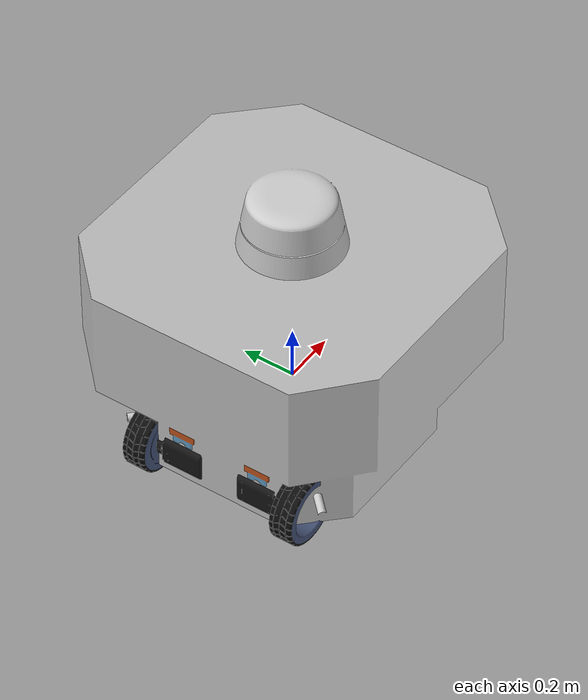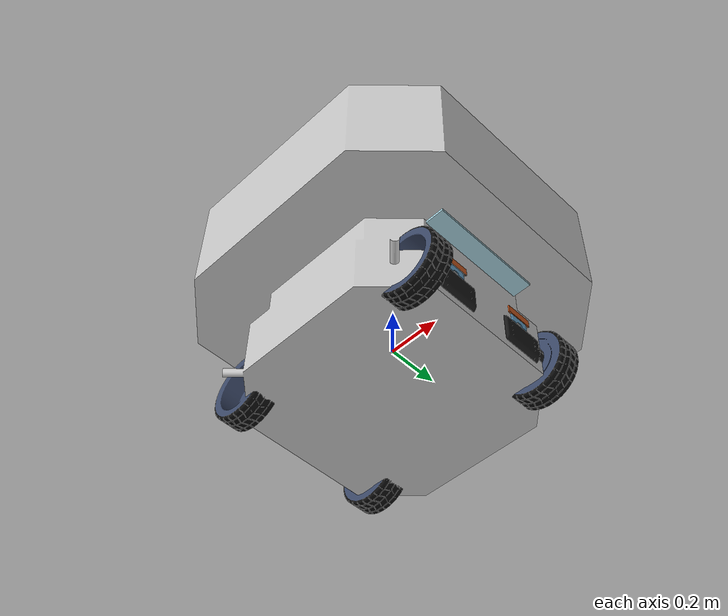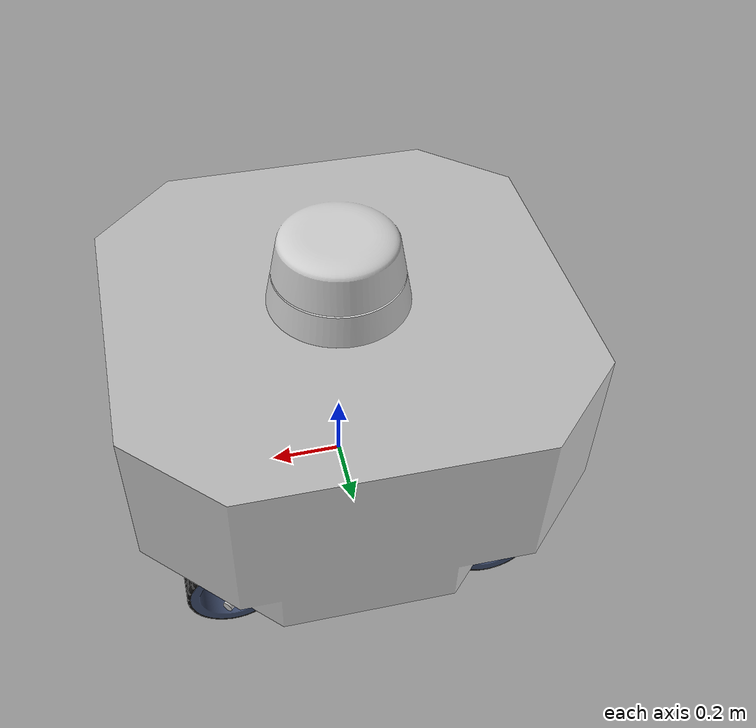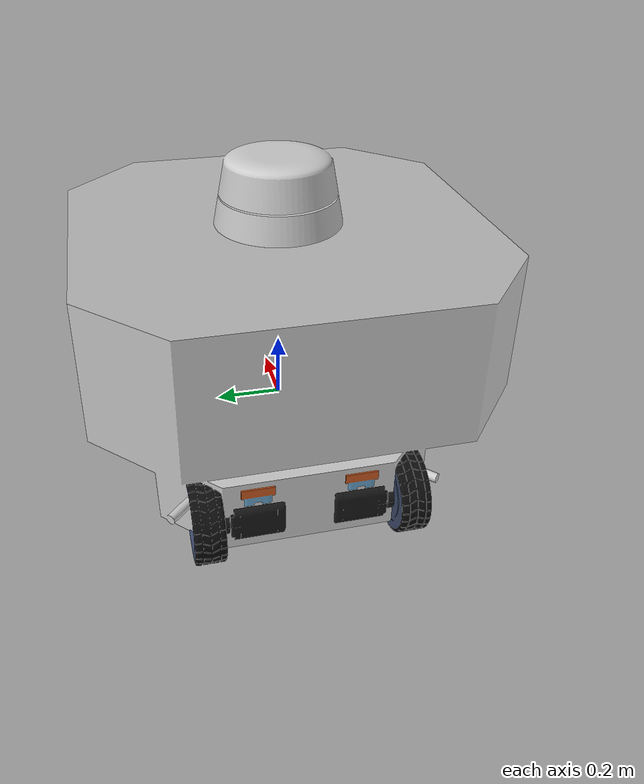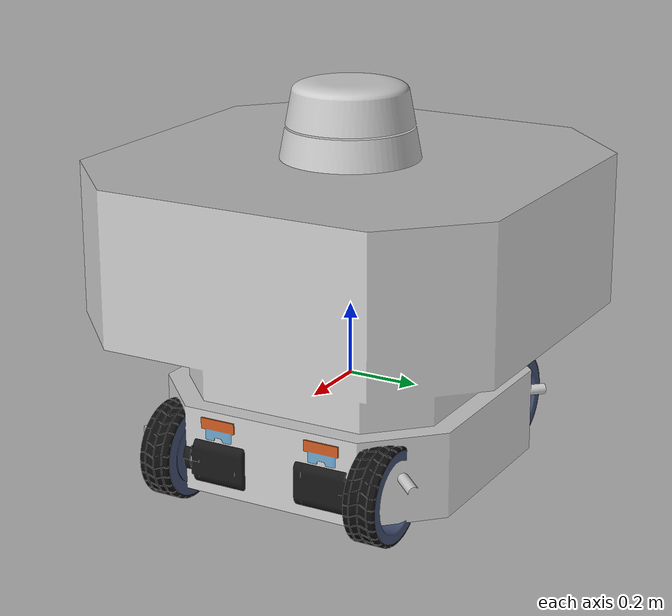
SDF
<sdf version="1.7">
  <model name="rs_robot">

    <link name="base_footprint"/>

    <joint name="base_joint" type="fixed">
      <parent>base_footprint</parent>
      <child>base_link</child>
      <pose>0.0 0.0 0.0 0 0 0</pose>
    </joint>

    <link name="base_link">
      <inertial>
        <pose>-0.015715 0.0 0.11 0.0 -0.0 0.0</pose>
        <mass>175.0</mass>
        <inertia>
          <ixx>1.514375</ixx>
          <ixy>0.0</ixy>
          <ixz>0.41250000000000003</ixz>
          <iyy>1.103034375</iyy>
          <iyz>0.0</iyz>
          <izz>1.061159375</izz>
        </inertia>
      </inertial>
      <collision name="base_footprint_fixed_joint_lump__base_link_collision">
        <pose>0.0 0.0 0.0 0.0 -0.0 1.5708</pose>
        <geometry>
          <mesh>
            <scale>5.0 5.0 5.0</scale>
            <uri>model://rs_robot/meshes/STL/base/base_link.stl</uri>
          </mesh>
        </geometry>
        <surface>
          <contact>
            <ode />
          </contact>
          <friction>
            <ode>
              <mu>0.05</mu>
              <mu2>0.05</mu2>
            </ode>
          </friction>
        </surface>
      </collision>
      <visual name="base_footprint_fixed_joint_lump__base_link_visual">
        <pose>0.0 0.0 0.0 0.0 -0.0 0.0</pose>
        <geometry>
          <mesh>
            <scale>5.0 5.0 5.0</scale>
            <uri>model://rs_robot/meshes/DAE/base/base_link.dae</uri>
          </mesh>
        </geometry>
      </visual>

      <sensor name="velodyne" type="gpu_ray">
        <pose>0 0 0.6 0 0 0</pose>
        <visualize>false</visualize>
        <always_on>1</always_on>
        <update_rate>10</update_rate>
        <ray>
          <scan>
            <horizontal>
              <samples>1024</samples>
              <resolution>0.05</resolution>
              <min_angle>-3.1416</min_angle>
              <max_angle>3.1416</max_angle>
            </horizontal>
            <vertical>
              <samples>512</samples>
              <resolution>0.05</resolution>
              <min_angle>-3.1416</min_angle>
              <max_angle>3.1416</max_angle>
            </vertical>
          </scan>
          <range>
            <min>0.2</min>
            <max>100</max>
            <resolution>0.01</resolution>
          </range>
          <noise>
            <type>gaussian</type>
            <mean>0</mean>
            <stddev>0.01</stddev>
          </noise>
        </ray>

        <plugin name="velodyne_plugin" filename="libgazebo_ros_velodyne_laser.so">
          <ros>
            <namespace>/rs_robot</namespace>
            <remapping>output:=velodyne_scan</remapping>
          </ros>
          <frameName>velodyne_link</frameName>
          <outputType>sensor_msgs/PointCloud2</outputType>
          <topicName>velodyne_scan</topicName>
        </plugin>
    </sensor>

    </link>

    <joint name="fl_steering_joint" type="revolute">
      <pose relative_to="base_link">0.385 0.155 -0.02 0.0 -0.0 0.0</pose>
      <parent>base_link</parent>
      <child>fl_steering_link</child>
      <axis>
        <xyz>0 0 1</xyz>
        <limit>
          <lower>-2.1</lower>
          <upper>2.1</upper>
          <effort>5</effort>
          <velocity>6.28</velocity>
        </limit>
        <dynamics>
          <damping>0.005</damping>
          <friction>0.02</friction>
          <spring_reference>0</spring_reference>
          <spring_stiffness>0</spring_stiffness>
        </dynamics>
      </axis>
    </joint>
    <link name="fl_steering_link">
      <pose relative_to="fl_steering_joint">0.0 0.0 0.0 0.0 -0.0 0.0</pose>
      <inertial>
        <pose>0.0 0.0 -0.1 0.0 -0.0 0.0</pose>
        <mass>18.75</mass>
        <inertia>
          <ixx>0.03125</ixx>
          <ixy>0.0</ixy>
          <ixz>0.0</ixz>
          <iyy>0.03125</iyy>
          <iyz>0.0</iyz>
          <izz>0.012499999999999999</izz>
        </inertia>
      </inertial>
      <collision name="fl_steering_link_collision">
        <pose>0.0 0.0 0.0 0.0 -0.0 0.0</pose>
        <geometry>
          <mesh>
            <scale>5.0 5.0 5.0</scale>
            <uri>model://rs_robot/meshes/STL/suspension/sus_link.stl</uri>
          </mesh>
        </geometry>
        <surface>
          <contact>
            <ode />
          </contact>
          <friction>
            <ode>
              <mu>0.05</mu>
              <mu2>0.05</mu2>
            </ode>
          </friction>
        </surface>
      </collision>
      <visual name="fl_steering_link_visual">
        <pose>0.0 0.0 0.0 0.0 -0.0 0.0</pose>
        <geometry>
          <mesh>
            <scale>5.0 5.0 5.0</scale>
            <uri>model://rs_robot/meshes/DAE/suspension/front_left_link.dae</uri>
          </mesh>
        </geometry>
      </visual>
      <self_collide>0</self_collide>
    </link>
    <joint name="fl_wheel_joint" type="revolute">
      <pose relative_to="fl_steering_link">0.0 0.10500000000000001 -0.125 0.0 0.0 -3.14159</pose>
      <parent>fl_steering_link</parent>
      <child>fl_wheel_link</child>
      <axis>
        <xyz>0 -1 0</xyz>
        <limit>
          <effort>1.5</effort>
          <velocity>20</velocity>
          <lower>-1e+16</lower>
          <upper>1e+16</upper>
        </limit>
        <dynamics>
          <damping>0.005</damping>
          <friction>0.02</friction>
          <spring_reference>0</spring_reference>
          <spring_stiffness>0</spring_stiffness>
        </dynamics>
      </axis>
    </joint>
    <link name="fl_wheel_link">
      <pose relative_to="fl_wheel_joint">0.0 0.0 0.0 0.0 -0.0 0.0</pose>
      <inertial>
        <pose>0.0 -0.035 0.0 0.0 -0.0 0.0</pose>
        <mass>6.25</mass>
        <inertia>
          <ixx>0.03125</ixx>
          <ixy>0.0</ixy>
          <ixz>0.0</ixz>
          <iyy>0.05625</iyy>
          <iyz>0.0</iyz>
          <izz>0.03125</izz>
        </inertia>
      </inertial>
      <collision name="fl_wheel_link_collision">
        <pose>0.0 0.0 0.0 0.0 -0.0 0.0</pose>
        <geometry>
          <mesh>
            <scale>5.0 5.0 5.0</scale>
            <uri>model://rs_robot/meshes/STL/wheel/robot_wheel.stl</uri>
          </mesh>
        </geometry>
      </collision>
      <visual name="fl_wheel_link_visual">
        <pose>0.0 0.0 0.0 0.0 -0.0 0.0</pose>
        <geometry>
          <mesh>
            <scale>5.0 5.0 5.0</scale>
            <uri>model://rs_robot/meshes/DAE/wheel/wheel_link.dae</uri>
          </mesh>
        </geometry>
      </visual>
    </link>
    <joint name="fr_steering_joint" type="revolute">
      <pose relative_to="base_link">0.385 -0.155 -0.02 0.0 -0.0 0.0</pose>
      <parent>base_link</parent>
      <child>fr_steering_link</child>
      <axis>
        <xyz>0 0 1</xyz>
        <limit>
          <lower>-2.1</lower>
          <upper>2.1</upper>
          <effort>5</effort>
          <velocity>6.28</velocity>
        </limit>
        <dynamics>
          <damping>0.005</damping>
          <friction>0.02</friction>
          <spring_reference>0</spring_reference>
          <spring_stiffness>0</spring_stiffness>
        </dynamics>
      </axis>
    </joint>
    <link name="fr_steering_link">
      <pose relative_to="fr_steering_joint">0.0 0.0 0.0 0.0 -0.0 0.0</pose>
      <inertial>
        <pose>0.0 0.0 -0.1 0.0 -0.0 0.0</pose>
        <mass>18.75</mass>
        <inertia>
          <ixx>0.03125</ixx>
          <ixy>0.0</ixy>
          <ixz>0.0</ixz>
          <iyy>0.03125</iyy>
          <iyz>0.0</iyz>
          <izz>0.012499999999999999</izz>
        </inertia>
      </inertial>
      <collision name="fr_steering_link_collision">
        <pose>0.0 0.0 0.0 0.0 -0.0 0.0</pose>
        <geometry>
          <mesh>
            <scale>5.0 5.0 5.0</scale>
            <uri>model://rs_robot/meshes/STL/suspension/sus_link.stl</uri>
          </mesh>
        </geometry>
        <surface>
          <contact>
            <ode />
          </contact>
          <friction>
            <ode>
              <mu>0.05</mu>
              <mu2>0.05</mu2>
            </ode>
          </friction>
        </surface>
      </collision>
      <visual name="fr_steering_link_visual">
        <pose>0.0 0.0 0.0 0.0 -0.0 0.0</pose>
        <geometry>
          <mesh>
            <scale>5.0 5.0 5.0</scale>
            <uri>model://rs_robot/meshes/DAE/suspension/front_right_link.dae</uri>
          </mesh>
        </geometry>
      </visual>
      <self_collide>0</self_collide>
    </link>
    <joint name="fr_wheel_joint" type="revolute">
      <pose relative_to="fr_steering_link">0.0 -0.10500000000000001 -0.125 0.0 -0.0 0.0</pose>
      <parent>fr_steering_link</parent>
      <child>fr_wheel_link</child>
      <axis>
        <xyz>0 1 0</xyz>
        <limit>
          <effort>1.5</effort>
          <velocity>20</velocity>
          <lower>-1e+16</lower>
          <upper>1e+16</upper>
        </limit>
        <dynamics>
          <damping>0.005</damping>
          <friction>0.02</friction>
          <spring_reference>0</spring_reference>
          <spring_stiffness>0</spring_stiffness>
        </dynamics>
      </axis>
    </joint>
    <link name="fr_wheel_link">
      <pose relative_to="fr_wheel_joint">0.0 0.0 0.0 0.0 -0.0 0.0</pose>
      <inertial>
        <pose>0.0 -0.035 0.0 0.0 -0.0 0.0</pose>
        <mass>6.25</mass>
        <inertia>
          <ixx>0.03125</ixx>
          <ixy>0.0</ixy>
          <ixz>0.0</ixz>
          <iyy>0.05625</iyy>
          <iyz>0.0</iyz>
          <izz>0.03125</izz>
        </inertia>
      </inertial>
      <collision name="fr_wheel_link_collision">
        <pose>0.0 0.0 0.0 0.0 -0.0 0.0</pose>
        <geometry>
          <mesh>
            <scale>5.0 5.0 5.0</scale>
            <uri>model://rs_robot/meshes/STL/wheel/robot_wheel.stl</uri>
          </mesh>
        </geometry>
      </collision>
      <visual name="fr_wheel_link_visual">
        <pose>0.0 0.0 0.0 0.0 -0.0 0.0</pose>
        <geometry>
          <mesh>
            <scale>5.0 5.0 5.0</scale>
            <uri>model://rs_robot/meshes/DAE/wheel/wheel_link.dae</uri>
          </mesh>
        </geometry>
      </visual>
    </link>

    <joint name="rl_steering_joint" type="revolute">
      <pose relative_to="base_link">-0.385 0.155 -0.02 0.0 -0.0 0.0</pose>
      <parent>base_link</parent>
      <child>rl_steering_link</child>
      <axis>
        <xyz>0 0 1</xyz>
        <limit>
          <lower>-2.1</lower>
          <upper>2.1</upper>
          <effort>5</effort>
          <velocity>6.28</velocity>
        </limit>
        <dynamics>
          <damping>0.005</damping>
          <friction>0.02</friction>
          <spring_reference>0</spring_reference>
          <spring_stiffness>0</spring_stiffness>
        </dynamics>
      </axis>
    </joint>
    <link name="rl_steering_link">
      <pose relative_to="rl_steering_joint">0.0 0.0 0.0 0.0 -0.0 0.0</pose>
      <inertial>
        <pose>0.0 0.0 -0.1 0.0 -0.0 0.0</pose>
        <mass>18.75</mass>
        <inertia>
          <ixx>0.03125</ixx>
          <ixy>0.0</ixy>
          <ixz>0.0</ixz>
          <iyy>0.03125</iyy>
          <iyz>0.0</iyz>
          <izz>0.012499999999999999</izz>
        </inertia>
      </inertial>
      <collision name="rl_steering_link_collision">
        <pose>0.0 0.0 0.0 0.0 -0.0 0.0</pose>
        <geometry>
          <mesh>
            <scale>5.0 5.0 5.0</scale>
            <uri>model://rs_robot/meshes/STL/suspension/sus_link.stl</uri>
          </mesh>
        </geometry>
        <surface>
          <contact>
            <ode />
          </contact>
          <friction>
            <ode>
              <mu>0.05</mu>
              <mu2>0.05</mu2>
            </ode>
          </friction>
        </surface>
      </collision>
      <visual name="rl_steering_link_visual">
        <pose>0.0 0.0 0.0 0.0 -0.0 0.0</pose>
        <geometry>
          <mesh>
            <scale>5.0 5.0 5.0</scale>
            <uri>model://rs_robot/meshes/DAE/suspension/rear_left_link.dae</uri>
          </mesh>
        </geometry>
      </visual>
      <self_collide>0</self_collide>
    </link>
    <joint name="rl_wheel_joint" type="revolute">
      <pose relative_to="rl_steering_link">0.0 0.10500000000000001 -0.125 0.0 0.0 -3.14159</pose>
      <parent>rl_steering_link</parent>
      <child>rl_wheel_link</child>
      <axis>
        <xyz>0 -1 0</xyz>
        <limit>
          <effort>1.5</effort>
          <velocity>20</velocity>
          <lower>-1e+16</lower>
          <upper>1e+16</upper>
        </limit>
        <dynamics>
          <damping>0.005</damping>
          <friction>0.02</friction>
          <spring_reference>0</spring_reference>
          <spring_stiffness>0</spring_stiffness>
        </dynamics>
      </axis>
    </joint>
    <link name="rl_wheel_link">
      <pose relative_to="rl_wheel_joint">0.0 0.0 0.0 0.0 -0.0 0.0</pose>
      <inertial>
        <pose>0.0 -0.035 0.0 0.0 -0.0 0.0</pose>
        <mass>6.25</mass>
        <inertia>
          <ixx>0.03125</ixx>
          <ixy>0.0</ixy>
          <ixz>0.0</ixz>
          <iyy>0.05625</iyy>
          <iyz>0.0</iyz>
          <izz>0.03125</izz>
        </inertia>
      </inertial>
      <collision name="rl_wheel_link_collision">
        <pose>0.0 0.0 0.0 0.0 -0.0 0.0</pose>
        <geometry>
          <mesh>
            <scale>5.0 5.0 5.0</scale>
            <uri>model://rs_robot/meshes/STL/wheel/robot_wheel.stl</uri>
          </mesh>
        </geometry>
      </collision>
      <visual name="rl_wheel_link_visual">
        <pose>0.0 0.0 0.0 0.0 -0.0 0.0</pose>
        <geometry>
          <mesh>
            <scale>5.0 5.0 5.0</scale>
            <uri>model://rs_robot/meshes/DAE/wheel/wheel_link.dae</uri>
          </mesh>
        </geometry>
      </visual>
    </link>
    <joint name="rr_steering_joint" type="revolute">
      <pose relative_to="base_link">-0.385 -0.155 -0.02 0.0 -0.0 0.0</pose>
      <parent>base_link</parent>
      <child>rr_steering_link</child>
      <axis>
        <xyz>0 0 1</xyz>
        <limit>
          <lower>-2.1</lower>
          <upper>2.1</upper>
          <effort>5</effort>
          <velocity>6.28</velocity>
        </limit>
        <dynamics>
          <damping>0.005</damping>
          <friction>0.02</friction>
          <spring_reference>0</spring_reference>
          <spring_stiffness>0</spring_stiffness>
        </dynamics>
      </axis>
    </joint>
    <link name="rr_steering_link">
      <pose relative_to="rr_steering_joint">0.0 0.0 0.0 0.0 -0.0 0.0</pose>
      <inertial>
        <pose>0.0 0.0 -0.1 0.0 -0.0 0.0</pose>
        <mass>18.75</mass>
        <inertia>
          <ixx>0.03125</ixx>
          <ixy>0.0</ixy>
          <ixz>0.0</ixz>
          <iyy>0.03125</iyy>
          <iyz>0.0</iyz>
          <izz>0.012499999999999999</izz>
        </inertia>
      </inertial>
      <collision name="rr_steering_link_collision">
        <pose>0.0 0.0 0.0 0.0 -0.0 0.0</pose>
        <geometry>
          <mesh>
            <scale>5.0 5.0 5.0</scale>
            <uri>model://rs_robot/meshes/STL/suspension/sus_link.stl</uri>
          </mesh>
        </geometry>
        <surface>
          <contact>
            <ode />
          </contact>
          <friction>
            <ode>
              <mu>0.05</mu>
              <mu2>0.05</mu2>
            </ode>
          </friction>
        </surface>
      </collision>
      <visual name="rr_steering_link_visual">
        <pose>0.0 0.0 0.0 0.0 -0.0 0.0</pose>
        <geometry>
          <mesh>
            <scale>5.0 5.0 5.0</scale>
            <uri>model://rs_robot/meshes/DAE/suspension/rear_right_link.dae</uri>
          </mesh>
        </geometry>
      </visual>
      <self_collide>0</self_collide>
    </link>
    <joint name="rr_wheel_joint" type="revolute">
      <pose relative_to="rr_steering_link">0.0 -0.10500000000000001 -0.125 0.0 -0.0 0.0</pose>
      <parent>rr_steering_link</parent>
      <child>rr_wheel_link</child>
      <axis>
        <xyz>0 1 0</xyz>
        <limit>
          <effort>1.5</effort>
          <velocity>20</velocity>
          <lower>-1e+16</lower>
          <upper>1e+16</upper>
        </limit>
        <dynamics>
          <damping>0.005</damping>
          <friction>0.02</friction>
          <spring_reference>0</spring_reference>
          <spring_stiffness>0</spring_stiffness>
        </dynamics>
      </axis>
    </joint>
    <link name="rr_wheel_link">
      <pose relative_to="rr_wheel_joint">0.0 0.0 0.0 0.0 -0.0 0.0</pose>
      <inertial>
        <pose>0.0 -0.035 0.0 0.0 -0.0 0.0</pose>
        <mass>6.25</mass>
        <inertia>
          <ixx>0.03125</ixx>
          <ixy>0.0</ixy>
          <ixz>0.0</ixz>
          <iyy>0.05625</iyy>
          <iyz>0.0</iyz>
          <izz>0.03125</izz>
        </inertia>
      </inertial>
      <collision name="rr_wheel_link_collision">
        <pose>0.0 0.0 0.0 0.0 -0.0 0.0</pose>
        <geometry>
          <mesh>
            <scale>5.0 5.0 5.0</scale>
            <uri>model://rs_robot/meshes/STL/wheel/robot_wheel.stl</uri>
          </mesh>
        </geometry>
      </collision>
      <visual name="rr_wheel_link_visual">
        <pose>0.0 0.0 0.0 0.0 -0.0 0.0</pose>
        <geometry>
          <mesh>
            <scale>5.0 5.0 5.0</scale>
            <uri>model://rs_robot/meshes/DAE/wheel/wheel_link.dae</uri>
          </mesh>
        </geometry>
      </visual>
    </link>

    <!-- Box alargado en horizontal -->
    <link name="box_central">
      <pose>-0.25 0 0.35 0 1.5708 1.5708</pose>
      <collision name="collision">
        <geometry>
          <cylinder>
            <length>0.4</length>
            <radius>0.1</radius>
          </cylinder>
        </geometry>
        <surface>
          <contact>
            <ode />
          </contact>
          <friction>
            <ode>
              <mu>0</mu>
              <mu2>0</mu2>
            </ode>
          </friction>
        </surface>
      </collision>
      <visual name="visual">
        <geometry>
          <cylinder>
            <length>0.4</length>
            <radius>0.1</radius>
          </cylinder>
        </geometry>
        <material>
          <ambient>0.68 0.85 0.90 1</ambient>
          <diffuse>0.68 0.85 0.90 1</diffuse>
          <specular>1 0.2 0.2 1</specular>
          <emissive>0 0 0 0</emissive>
        </material>
      </visual>
    </link>

    <!-- Box plano vertical izquierdo -->
    <link name="box_plano_izquierdo">
      <pose>-0.25 -0.2 0.35 0 0 1.5708</pose>
      <collision name="collision">
        <geometry>
          <box>
            <size>0.025 0.25 0.35</size>
          </box>
        </geometry>
        <surface>
          <contact>
            <ode />
          </contact>
          <friction>
            <ode>
              <mu>0</mu>
              <mu2>0</mu2>
            </ode>
          </friction>
        </surface>
      </collision>
      <visual name="visual">
        <geometry>
          <box>
            <size>0.025 0.25 0.35</size>
          </box>
        </geometry>
        <material>
          <ambient>0.5 0.5 0.5 1</ambient>
          <diffuse>0.5 0.5 0.5 1</diffuse>
          <specular>0.1 0.1 0.1 1</specular>
          <emissive>0 0 0 1</emissive>
        </material>
      </visual>
    </link>

    <!-- Box plano vertical derecho -->
    <link name="box_plano_derecho">
      <pose>-0.25 0.2 0.35 0 0 1.5708</pose>
      <collision name="collision">
        <geometry>
          <box>
            <size>0.025 0.25 0.35</size>
          </box>
        </geometry>
        <surface>
          <contact>
            <ode />
          </contact>
          <friction>
            <ode>
              <mu>0</mu>
              <mu2>0</mu2>
            </ode>
          </friction>
        </surface>
      </collision>
      <visual name="visual">
        <geometry>
          <box>
            <size>0.025 0.25 0.35</size>
          </box>
        </geometry>
        <material>
          <ambient>0.5 0.5 0.5 1</ambient>
          <diffuse>0.5 0.5 0.5 1</diffuse>
          <specular>0.1 0.1 0.1 1</specular>
          <emissive>0 0 0 1</emissive>
        </material>
      </visual>
    </link>

    <!-- Base -->
    <link name="plataforma_central">
      <pose>0 0 0.18 0 0 0</pose>
      <collision name="collision">
        <geometry>
          <box>
            <size>0.9 0.45 0.01</size>
          </box>
        </geometry>
        <surface>
          <contact>
            <ode />
          </contact>
          <friction>
            <ode>
              <mu>0</mu>
              <mu2>0</mu2>
            </ode>
          </friction>
        </surface>
      </collision>
      <visual name="visual">
        <geometry>
          <box>
            <size>0.9 0.45 0.01</size>
          </box>
        </geometry>
        <material>
          <ambient>0.68 0.85 0.90 1</ambient>
          <diffuse>0.68 0.85 0.90 1</diffuse>
          <specular>1 0.2 0.2 1</specular>
          <emissive>0 0 0 0</emissive>
        </material>
      </visual>
    </link>

    <!-- plataforma_uav_1 -->
    <link name="plataforma_uav_1">
      <pose>0.2 0.14 0.2 0 0 0</pose>
      <collision name="collision">
        <geometry>
          <box>
            <size>0.4 0.05 0.02</size>
          </box>
        </geometry>
      </collision>
      <visual name="visual">
        <geometry>
          <box>
            <size>0.4 0.05 0.02</size>
          </box>
        </geometry>
        <material>
          <ambient>0.5 0.5 0.5 1</ambient>
          <diffuse>0.5 0.5 0.5 1</diffuse>
          <specular>0.1 0.1 0.1 1</specular>
          <emissive>0 0 0 1</emissive>
        </material>
      </visual>
    </link>

    <!-- plataforma_uav_2 -->
    <link name="plataforma_uav_2">
      <pose>0.2 -0.14 0.2 0 0 0</pose>
      <collision name="collision">
        <geometry>
          <box>
            <size>0.4 0.05 0.02</size>
          </box>
        </geometry>
      </collision>
      <visual name="visual">
        <geometry>
          <box>
            <size>0.4 0.05 0.02</size>
          </box>
        </geometry>
        <material>
          <ambient>0.5 0.5 0.5 1</ambient>
          <diffuse>0.5 0.5 0.5 1</diffuse>
          <specular>0.1 0.1 0.1 1</specular>
          <emissive>0 0 0 1</emissive>
        </material>
      </visual>
    </link>

    <!-- Unión revoluta izquierda -->
    <joint name="joint_izquierdo" type="revolute">
      <parent>box_plano_izquierdo</parent>
      <child>box_central</child>
      <pose>0 0 0 0 0 1.5708</pose>
      <axis>
        <xyz>0 0 1</xyz>
        <limit>
          <lower>-1e16</lower>
          <upper>1e16</upper>
        </limit>
        <dynamics>
          <damping>0.05</damping>
          <friction>0.0</friction>
          <spring_stiffness>0</spring_stiffness>
          <spring_reference>0</spring_reference>
        </dynamics>
      </axis>
    </joint>

    <!-- Unión revoluta derecha -->
    <!-- Rodamiento doble coaxial con joint_izquierdo. Parámetros idénticos. -->
    <joint name="joint_derecho" type="revolute">
      <parent>box_plano_derecho</parent>
      <child>box_central</child>
      <pose>0 0 0 0 0 1.5708</pose>
      <axis>
        <xyz>0 0 1</xyz>
        <limit>
          <lower>-1e16</lower>
          <upper>1e16</upper>
        </limit>
        <dynamics>
          <damping>0.05</damping>
          <friction>0.0</friction>
          <spring_stiffness>0</spring_stiffness>
          <spring_reference>0</spring_reference>
        </dynamics>
      </axis>
    </joint>

    <!-- Unión fixed derecha al UGV -->
    <joint name="joint_derecho_to_ugv" type="fixed">
      <parent>base_link</parent>
      <child>box_plano_derecho</child>
      <pose>0 0 0 0 0 1.5708</pose>
    </joint>

    <!-- Unión fixed izquierda al UGV -->
    <joint name="joint_izquierdo_to_ugv" type="fixed">
      <parent>base_link</parent>
      <child>box_plano_izquierdo</child>
      <pose>0 0 0 0 0 1.5708</pose>
    </joint>

    <!-- Unión fixed plataforma plana al UGV -->
    <joint name="joint_plataforma_to_ugv" type="fixed">
      <parent>base_link</parent>
      <child>plataforma_central</child>
      <pose>0 0 0 0 0 0</pose>
    </joint>

    <!-- Unión fixed plataforma plana para UAV -->
    <joint name="joint_plataforma_to_uav_1" type="fixed">
      <parent>base_link</parent>
      <child>plataforma_uav_1</child>
      <pose>0 0 0 0 0 0</pose>
    </joint>
    <joint name="joint_plataforma_to_uav_2" type="fixed">
      <parent>base_link</parent>
      <child>plataforma_uav_2</child>
      <pose>0 0 0 0 0 0</pose>
    </joint>

    <static>0</static>

    <plugin name="four_ws_robot_joint_state" filename="libgazebo_ros_joint_state_publisher.so">
      <ros>
          <remapping>~/out:=joint_states</remapping>
      </ros>
      <update_rate>60</update_rate>
      <joint_name>fl_wheel_joint</joint_name>
      <joint_name>fr_wheel_joint</joint_name>
      <joint_name>rl_wheel_joint</joint_name>
      <joint_name>rr_wheel_joint</joint_name>
      <joint_name>joint_izquierdo</joint_name>
      <joint_name>fl_steering_joint</joint_name>
      <joint_name>fr_steering_joint</joint_name>
      <joint_name>rl_steering_joint</joint_name>
      <joint_name>rr_steering_joint</joint_name>
    </plugin>

  <ros2_control name="GazeboSystem" type="system">
    <hardware>
      <plugin>gazebo_ros2_control/GazeboSystem</plugin>
    </hardware>

    <joint name="fl_wheel_joint">
      <command_interface name="velocity">
        <param name="min">-3.14</param>
        <param name="max">3.14</param>
      </command_interface>
      <state_interface name="velocity" />
      <state_interface name="effort" />
    </joint>

    <joint name="fr_wheel_joint">
      <command_interface name="velocity">
        <param name="min">-3.14</param>
        <param name="max">3.14</param>
      </command_interface>
      <state_interface name="velocity" />
      <state_interface name="effort" />
    </joint>

    <joint name="rl_wheel_joint">
      <command_interface name="velocity">
        <param name="min">-3.14</param>
        <param name="max">3.14</param>
      </command_interface>
      <state_interface name="velocity" />
      <state_interface name="effort" />
    </joint>

    <joint name="rr_wheel_joint">
      <command_interface name="velocity">
        <param name="min">-3.14</param>
        <param name="max">3.14</param>
      </command_interface>
      <state_interface name="velocity" />
      <state_interface name="effort" />
    </joint>

    <joint name="joint_izquierdo">
      <command_interface name="velocity">
        <param name="min">-3.14</param>
        <param name="max">3.14</param>
      </command_interface>
      <state_interface name="velocity" />
      <state_interface name="effort" />
    </joint>

    <joint name="fl_steering_joint">
      <command_interface name="position">
        <param name="min">-3.14</param>
        <param name="max">3.14</param>
      </command_interface>
      <state_interface name="position">
        <param name="initial_value">0</param>
      </state_interface>
      <state_interface name="velocity" />
      <state_interface name="effort" />
    </joint>

    <joint name="fr_steering_joint">
      <command_interface name="position">
        <param name="min">-3.14</param>
        <param name="max">3.14</param>
      </command_interface>
      <state_interface name="position">
        <param name="initial_value">0</param>
      </state_interface>
      <state_interface name="velocity" />
      <state_interface name="effort" />
    </joint>

    <joint name="rl_steering_joint">
      <command_interface name="position">
        <param name="min">-3.14</param>
        <param name="max">3.14</param>
      </command_interface>
      <state_interface name="position">
        <param name="initial_value">0</param>
      </state_interface>
      <state_interface name="velocity" />
      <state_interface name="effort" />
    </joint>

    <joint name="rr_steering_joint">
      <command_interface name="position">
        <param name="min">-3.14</param>
        <param name="max">3.14</param>
      </command_interface>
      <state_interface name="position">
        <param name="initial_value">0</param>
      </state_interface>
      <state_interface name="velocity" />
      <state_interface name="effort" />
    </joint>

  </ros2_control>

    <plugin name="gazebo_ros2_control" filename="libgazebo_ros2_control.so">
      <ros>
        <namespace>/</namespace>
      </ros>
        <parameters>/home/upo/marsupial/src/marsupial_simulator_ros2/models/rs_robot/config/controllers.yaml</parameters>
    </plugin>

    <plugin name="ugv_plugin" filename="libplugin_ugv.so">
      <bodyName>base_link</bodyName>
      <maxForce>50</maxForce>
    </plugin>

  </model>
</sdf>
